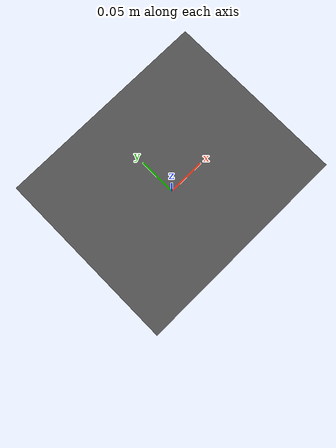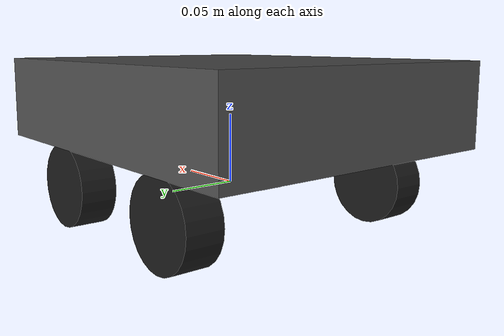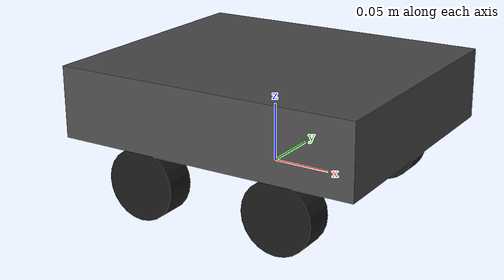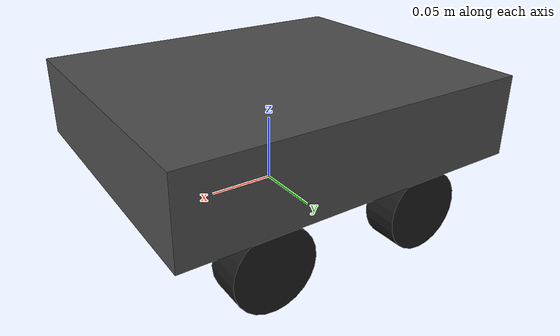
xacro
<?xml version="1.0"?>
<robot name="mcr" xmlns:xacro="http://www.ros.org/wiki/xacro">

  <!-- Parameters                                                    -->
  <xacro:property name="wheel_radius"   value="0.030"/>   <!-- m (60mm mecanum wheels, measured) -->
  <xacro:property name="wheel_width"    value="0.026"/>
  <xacro:property name="wheel_mass"     value="0.05"/>    <!-- kg -->

  <xacro:property name="lx"             value="0.0625"/> <!-- half wheelbase (m), measured 2026-08-30 -->
  <xacro:property name="ly"             value="0.09"/>   <!-- half track width (m), measured 2026-08-30 -->

  <xacro:property name="base_length"    value="0.26"/>    <!-- chassis length -->
  <xacro:property name="base_width"     value="0.22"/>    <!-- chassis width -->
  <xacro:property name="base_height"    value="0.06"/>    <!-- chassis thickness -->

  <xacro:property name="chassis_mass"   value="2.0"/>     <!-- kg (with Pi + battery) -->

  <xacro:property name="pi_offset_z"    value="0.04"/>    <!-- Pi board above chassis -->
  <xacro:property name="lidar_offset_z" value="0.10"/>    <!-- LiDAR height -->

  <!-- Serial device for the STM32 link. Overridable from the command line:
       xacro mcr.urdf.xacro serial_device:=/dev/ttyAMA10   (or a pty for the sim) -->
  <xacro:arg name="serial_device" default="/dev/ttyAMA10"/>

  <!-- Materials                                                     -->
  <material name="chassis_grey">
    <color rgba="0.3 0.3 0.3 1.0"/>
  </material>
  <material name="wheel_black">
    <color rgba="0.1 0.1 0.1 1.0"/>
  </material>

  <!-- Macros                                                        -->

  <!-- Mecanum wheel macro -->
  <xacro:macro name="mecanum_wheel"
               params="name x y parent
                       roller_angle:=0.785398">  <!-- ±45° = ±π/4 rad -->
    <joint name="${name}_joint" type="continuous">
      <parent link="${parent}"/>
      <child  link="${name}_link"/>
      <origin xyz="${x} ${y} ${-wheel_radius}" rpy="0 0 0"/>
      <axis   xyz="0 1 0"/>  <!-- Wheel rotates about Y axis -->
      <dynamics damping="0.01" friction="0.1"/>
    </joint>

    <link name="${name}_link">
      <visual>
        <origin xyz="0 0 0" rpy="${pi/2} 0 0"/>
        <geometry>
          <cylinder radius="${wheel_radius}" length="${wheel_width}"/>
        </geometry>
        <material name="wheel_black"/>
      </visual>
      <collision>
        <origin xyz="0 0 0" rpy="${pi/2} 0 0"/>
        <geometry>
          <cylinder radius="${wheel_radius}" length="${wheel_width}"/>
        </geometry>
      </collision>
      <inertial>
        <mass value="${wheel_mass}"/>
        <inertia
          ixx="${0.5 * wheel_mass * wheel_radius * wheel_radius}"
          iyy="${wheel_mass * wheel_radius * wheel_radius}"
          izz="${0.5 * wheel_mass * wheel_radius * wheel_radius}"
          ixy="0" ixz="0" iyz="0"/>
      </inertial>
    </link>
  </xacro:macro>

  <!-- Base / Chassis                                                -->
  <link name="base_footprint"/>

  <joint name="base_footprint_joint" type="fixed">
    <parent link="base_footprint"/>
    <child  link="base_link"/>
    <origin xyz="0 0 ${wheel_radius}" rpy="0 0 0"/>
  </joint>

  <link name="base_link">
    <visual>
      <origin xyz="0 0 ${base_height/2}" rpy="0 0 0"/>
      <geometry>
        <box size="${base_length} ${base_width} ${base_height}"/>
      </geometry>
      <material name="chassis_grey"/>
    </visual>
    <collision>
      <origin xyz="0 0 ${base_height/2}" rpy="0 0 0"/>
      <geometry>
        <box size="${base_length} ${base_width} ${base_height}"/>
      </geometry>
    </collision>
    <inertial>
      <mass value="${chassis_mass}"/>
      <inertia
        ixx="${(1.0/12.0) * chassis_mass * (base_width*base_width + base_height*base_height)}"
        iyy="${(1.0/12.0) * chassis_mass * (base_length*base_length + base_height*base_height)}"
        izz="${(1.0/12.0) * chassis_mass * (base_length*base_length + base_width*base_width)}"
        ixy="0" ixz="0" iyz="0"/>
    </inertial>
  </link>

  <!-- 4 Mecanum Wheels                                              -->
  <xacro:mecanum_wheel name="wheel_front_left"  parent="base_link"
                        x="${lx}"  y="${ly}"  roller_angle="${pi/4}"/>
  <xacro:mecanum_wheel name="wheel_front_right" parent="base_link"
                        x="${lx}"  y="${-ly}" roller_angle="${-pi/4}"/>
  <xacro:mecanum_wheel name="wheel_rear_left"   parent="base_link"
                        x="${-lx}" y="${ly}"  roller_angle="${-pi/4}"/>
  <xacro:mecanum_wheel name="wheel_rear_right"  parent="base_link"
                        x="${-lx}" y="${-ly}" roller_angle="${pi/4}"/>

  <!-- Sensors                                                       -->

  <!-- IMU -->
  <link name="imu_link"/>
  <joint name="imu_joint" type="fixed">
    <parent link="base_link"/>
    <child  link="imu_link"/>
    <origin xyz="0 0 ${base_height + 0.01}" rpy="0 0 0"/>
  </joint>

  <!-- LiDAR -->
  <link name="laser_link"/>
  <joint name="laser_joint" type="fixed">
    <parent link="base_link"/>
    <child  link="laser_link"/>
    <origin xyz="0 0 ${lidar_offset_z}" rpy="0 0 0"/>
  </joint>

  <!-- ToF sensor (front-facing, on chassis front edge) -->
  <link name="tof_link"/>
  <joint name="tof_joint" type="fixed">
    <parent link="base_link"/>
    <child  link="tof_link"/>
    <origin xyz="${base_length/2 - 0.01} 0 ${base_height}" rpy="0 0 0"/>
  </joint>

  <!-- Camera -->
  <link name="camera_link"/>
  <joint name="camera_joint" type="fixed">
    <parent link="base_link"/>
    <child  link="camera_link"/>
    <origin xyz="${base_length/2 - 0.02} 0 ${lidar_offset_z}" rpy="0 0 0"/>
  </joint>

  <!-- ros2_control                                                  -->
  <ros2_control name="MCRSystem" type="system">
    <hardware>
      <plugin>mcr_bringup/MCRHardwareInterface</plugin>
      <param name="serial_device">${xacro.arg('serial_device')}</param>
      <param name="serial_baud">921600</param>
      <param name="wheel_radius">${wheel_radius}</param>
      <param name="lx">${lx}</param>
      <param name="ly">${ly}</param>
    </hardware>

    <!-- 4 velocity-controlled wheel joints -->
    <joint name="wheel_front_left_joint">
      <command_interface name="velocity"/>
      <state_interface    name="position"/>
      <state_interface    name="velocity"/>
    </joint>
    <joint name="wheel_front_right_joint">
      <command_interface name="velocity"/>
      <state_interface    name="position"/>
      <state_interface    name="velocity"/>
    </joint>
    <joint name="wheel_rear_left_joint">
      <command_interface name="velocity"/>
      <state_interface    name="position"/>
      <state_interface    name="velocity"/>
    </joint>
    <joint name="wheel_rear_right_joint">
      <command_interface name="velocity"/>
      <state_interface    name="position"/>
      <state_interface    name="velocity"/>
    </joint>

    <!-- Sensors -->
    <sensor name="imu_sensor">
      <state_interface name="orientation.w"/>
      <state_interface name="orientation.x"/>
      <state_interface name="orientation.y"/>
      <state_interface name="orientation.z"/>
      <state_interface name="angular_velocity.x"/>
      <state_interface name="angular_velocity.y"/>
      <state_interface name="angular_velocity.z"/>
      <state_interface name="linear_acceleration.x"/>
      <state_interface name="linear_acceleration.y"/>
      <state_interface name="linear_acceleration.z"/>
      <param name="frame_id">imu_link</param>
    </sensor>

    <sensor name="tof_sensor">
      <state_interface name="range"/>
      <param name="frame_id">tof_link</param>
    </sensor>
  </ros2_control>

</robot>
